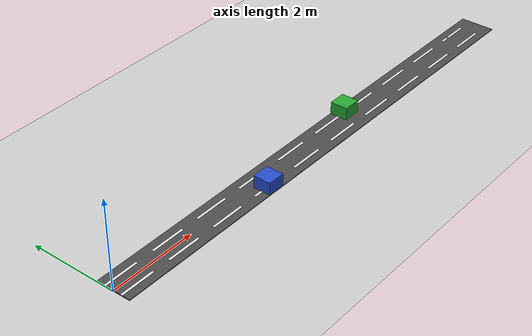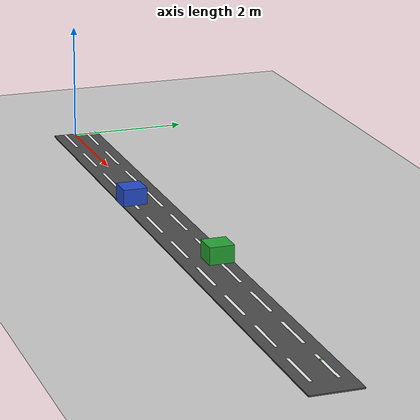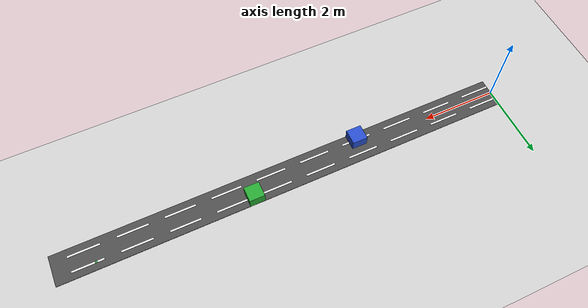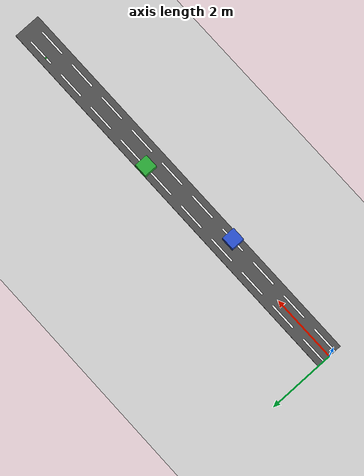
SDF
<sdf version="1.7">
 <world name="default">
  <light name="sun" type="directional">
   <pose>0 0 10 0 -0 0</pose>
   <diffuse>0.8 0.8 0.8 1</diffuse>
   <specular>0.2 0.2 0.2 1</specular>
   <attenuation>
    <range>1000</range>
    <constant>0.9</constant>
    <linear>0.01</linear>
    <quadratic>0.001</quadratic>
   </attenuation>
   <direction>-0.5 0.1 -0.9</direction>
   <spot><inner_angle>0</inner_angle><outer_angle>0</outer_angle><falloff>0</falloff></spot>
  </light>
  <model name="ground_plane">
   <static>1</static>
   <link name="link">
    <collision name="collision">
     <geometry><plane><normal>0 0 1</normal><size>100 100</size></plane></geometry>
     <surface><friction><ode><mu>100</mu><mu2>50</mu2></ode></friction></surface>
    </collision>
    <visual name="visual">
     <cast_shadows>0</cast_shadows>
     <geometry><plane><normal>0 0 1</normal><size>100 100</size></plane></geometry>
     <material>
      <script><uri>file://media/materials/scripts/gazebo.material</uri><name>Gazebo/Grey</name></script>
     </material>
    </visual>
   </link>
  </model>
  <model name="road_surface">
   <static>1</static>
   <pose>6 0 0.01 0 -0 0</pose>
   <link name="link">
    <visual name="visual">
     <geometry><box><size>12 0.8 0.02</size></box></geometry>
     <material>
      <script><uri>file://media/materials/scripts/gazebo.material</uri><name>Gazebo/DarkGrey</name></script>
     </material>
    </visual>
    <collision name="collision"><geometry><box><size>12 0.8 0.02</size></box></geometry></collision>
   </link>
  </model>
  <model name="dash_left_1">
   <static>1</static>
   <pose>0.4 0.2 0.02 0 -0 0</pose>
   <link name="l">
    <visual name="v">
     <geometry><box><size>0.8 0.05 0.002</size></box></geometry>
     <material>
      <script><uri>file://media/materials/scripts/gazebo.material</uri><name>Gazebo/White</name></script>
     </material>
    </visual>
   </link>
  </model>
  <model name="dash_left_2">
   <static>1</static>
   <pose>1.6 0.2 0.02 0 -0 0</pose>
   <link name="l">
    <visual name="v">
     <geometry><box><size>0.8 0.05 0.002</size></box></geometry>
     <material>
      <script><uri>file://media/materials/scripts/gazebo.material</uri><name>Gazebo/White</name></script>
     </material>
    </visual>
   </link>
  </model>
  <model name="dash_left_3">
   <static>1</static>
   <pose>2.8 0.2 0.02 0 -0 0</pose>
   <link name="l">
    <visual name="v">
     <geometry><box><size>0.8 0.05 0.002</size></box></geometry>
     <material>
      <script><uri>file://media/materials/scripts/gazebo.material</uri><name>Gazebo/White</name></script>
     </material>
    </visual>
   </link>
  </model>
  <model name="dash_left_4">
   <static>1</static>
   <pose>4 0.2 0.02 0 -0 0</pose>
   <link name="l">
    <visual name="v">
     <geometry><box><size>0.8 0.05 0.002</size></box></geometry>
     <material>
      <script><uri>file://media/materials/scripts/gazebo.material</uri><name>Gazebo/White</name></script>
     </material>
    </visual>
   </link>
  </model>
  <model name="dash_left_5">
   <static>1</static>
   <pose>5.2 0.2 0.02 0 -0 0</pose>
   <link name="l">
    <visual name="v">
     <geometry><box><size>0.8 0.05 0.002</size></box></geometry>
     <material>
      <script><uri>file://media/materials/scripts/gazebo.material</uri><name>Gazebo/White</name></script>
     </material>
    </visual>
   </link>
  </model>
  <model name="dash_left_6">
   <static>1</static>
   <pose>6.4 0.2 0.02 0 -0 0</pose>
   <link name="l">
    <visual name="v">
     <geometry><box><size>0.8 0.05 0.002</size></box></geometry>
     <material>
      <script><uri>file://media/materials/scripts/gazebo.material</uri><name>Gazebo/White</name></script>
     </material>
    </visual>
   </link>
  </model>
  <model name="dash_left_7">
   <static>1</static>
   <pose>7.6 0.2 0.02 0 -0 0</pose>
   <link name="l">
    <visual name="v">
     <geometry><box><size>0.8 0.05 0.002</size></box></geometry>
     <material>
      <script><uri>file://media/materials/scripts/gazebo.material</uri><name>Gazebo/White</name></script>
     </material>
    </visual>
   </link>
  </model>
  <model name="dash_left_8">
   <static>1</static>
   <pose>8.8 0.2 0.02 0 -0 0</pose>
   <link name="l">
    <visual name="v">
     <geometry><box><size>0.8 0.05 0.002</size></box></geometry>
     <material>
      <script><uri>file://media/materials/scripts/gazebo.material</uri><name>Gazebo/White</name></script>
     </material>
    </visual>
   </link>
  </model>
  <model name="dash_left_9">
   <static>1</static>
   <pose>10 0.2 0.02 0 -0 0</pose>
   <link name="l">
    <visual name="v">
     <geometry><box><size>0.8 0.05 0.002</size></box></geometry>
     <material>
      <script><uri>file://media/materials/scripts/gazebo.material</uri><name>Gazebo/White</name></script>
     </material>
    </visual>
   </link>
  </model>
  <model name="dash_left_10">
   <static>1</static>
   <pose>11.2 0.2 0.02 0 -0 0</pose>
   <link name="l">
    <visual name="v">
     <geometry><box><size>0.8 0.05 0.002</size></box></geometry>
     <material>
      <script><uri>file://media/materials/scripts/gazebo.material</uri><name>Gazebo/White</name></script>
     </material>
    </visual>
   </link>
  </model>
  <model name="dash_right_1">
   <static>1</static>
   <pose>0.4 -0.2 0.02 0 -0 0</pose>
   <link name="l">
    <visual name="v">
     <geometry><box><size>0.8 0.05 0.002</size></box></geometry>
     <material>
      <script><uri>file://media/materials/scripts/gazebo.material</uri><name>Gazebo/White</name></script>
     </material>
    </visual>
   </link>
  </model>
  <model name="dash_right_2">
   <static>1</static>
   <pose>1.6 -0.2 0.02 0 -0 0</pose>
   <link name="l">
    <visual name="v">
     <geometry><box><size>0.8 0.05 0.002</size></box></geometry>
     <material>
      <script><uri>file://media/materials/scripts/gazebo.material</uri><name>Gazebo/White</name></script>
     </material>
    </visual>
   </link>
  </model>
  <model name="dash_right_3">
   <static>1</static>
   <pose>2.8 -0.2 0.02 0 -0 0</pose>
   <link name="l">
    <visual name="v">
     <geometry><box><size>0.8 0.05 0.002</size></box></geometry>
     <material>
      <script><uri>file://media/materials/scripts/gazebo.material</uri><name>Gazebo/White</name></script>
     </material>
    </visual>
   </link>
  </model>
  <model name="dash_right_4">
   <static>1</static>
   <pose>4 -0.2 0.02 0 -0 0</pose>
   <link name="l">
    <visual name="v">
     <geometry><box><size>0.8 0.05 0.002</size></box></geometry>
     <material>
      <script><uri>file://media/materials/scripts/gazebo.material</uri><name>Gazebo/White</name></script>
     </material>
    </visual>
   </link>
  </model>
  <model name="dash_right_5">
   <static>1</static>
   <pose>5.2 -0.2 0.02 0 -0 0</pose>
   <link name="l">
    <visual name="v">
     <geometry><box><size>0.8 0.05 0.002</size></box></geometry>
     <material>
      <script><uri>file://media/materials/scripts/gazebo.material</uri><name>Gazebo/White</name></script>
     </material>
    </visual>
   </link>
  </model>
  <model name="dash_right_6">
   <static>1</static>
   <pose>6.4 -0.2 0.02 0 -0 0</pose>
   <link name="l">
    <visual name="v">
     <geometry><box><size>0.8 0.05 0.002</size></box></geometry>
     <material>
      <script><uri>file://media/materials/scripts/gazebo.material</uri><name>Gazebo/White</name></script>
     </material>
    </visual>
   </link>
  </model>
  <model name="dash_right_7">
   <static>1</static>
   <pose>7.6 -0.2 0.02 0 -0 0</pose>
   <link name="l">
    <visual name="v">
     <geometry><box><size>0.8 0.05 0.002</size></box></geometry>
     <material>
      <script><uri>file://media/materials/scripts/gazebo.material</uri><name>Gazebo/White</name></script>
     </material>
    </visual>
   </link>
  </model>
  <model name="dash_right_8">
   <static>1</static>
   <pose>8.8 -0.2 0.02 0 -0 0</pose>
   <link name="l">
    <visual name="v">
     <geometry><box><size>0.8 0.05 0.002</size></box></geometry>
     <material>
      <script><uri>file://media/materials/scripts/gazebo.material</uri><name>Gazebo/White</name></script>
     </material>
    </visual>
   </link>
  </model>
  <model name="dash_right_9">
   <static>1</static>
   <pose>10 -0.2 0.02 0 -0 0</pose>
   <link name="l">
    <visual name="v">
     <geometry><box><size>0.8 0.05 0.002</size></box></geometry>
     <material>
      <script><uri>file://media/materials/scripts/gazebo.material</uri><name>Gazebo/White</name></script>
     </material>
    </visual>
   </link>
  </model>
  <model name="dash_right_10">
   <static>1</static>
   <pose>11.2 -0.2 0.02 0 -0 0</pose>
   <link name="l">
    <visual name="v">
     <geometry><box><size>0.8 0.05 0.002</size></box></geometry>
     <material>
      <script><uri>file://media/materials/scripts/gazebo.material</uri><name>Gazebo/White</name></script>
     </material>
    </visual>
   </link>
  </model>
  <model name="stop_marker_plane">
   <static>1</static>
   <pose>11 0.2 0.03 0 -0 0</pose>
   <link name="link">
    <visual name="visual">
     <geometry><plane><normal>0 0 1</normal><size>0.05 0.05</size></plane></geometry>
     <material>
      <script><uri>file://media/materials/scripts/gazebo.material</uri><name>Gazebo/Green</name></script>
     </material>
    </visual>
   </link>
  </model>
  <model name="obstacle_1">
   <static>1</static>
   <pose>4 -0.2 0.15 0 -0 0</pose>
   <link name="link">
    <visual name="visual">
     <geometry><box><size>0.4 0.4 0.3</size></box></geometry>
     <material>
      <script><uri>file://media/materials/scripts/gazebo.material</uri><name>Gazebo/Blue</name></script>
     </material>
    </visual>
    <collision name="collision"><geometry><box><size>0.4 0.4 0.3</size></box></geometry></collision>
   </link>
  </model>
  <model name="obstacle_2">
   <static>1</static>
   <pose>7 0.2 0.15 0 -0 0</pose>
   <link name="link">
    <visual name="visual">
     <geometry><box><size>0.4 0.4 0.3</size></box></geometry>
     <material>
      <script><uri>file://media/materials/scripts/gazebo.material</uri><name>Gazebo/Green</name></script>
     </material>
    </visual>
    <collision name="collision"><geometry><box><size>0.4 0.4 0.3</size></box></geometry></collision>
   </link>
  </model>
  <gravity>0 0 -9.8</gravity>
  <magnetic_field>6e-06 2.3e-05 -4.2e-05</magnetic_field>
  <atmosphere type="adiabatic"/>
  <physics type="ode">
   <max_step_size>0.001</max_step_size>
   <real_time_factor>1</real_time_factor>
   <real_time_update_rate>1000</real_time_update_rate>
  </physics>
  <scene><ambient>0.4 0.4 0.4 1</ambient><background>0.7 0.7 0.7 1</background><shadows>1</shadows></scene>
  <audio><device>default</device></audio>
  <spherical_coordinates>
   <surface_model>EARTH_WGS84</surface_model>
   <latitude_deg>0</latitude_deg>
   <longitude_deg>0</longitude_deg>
   <elevation>0</elevation>
   <heading_deg>0</heading_deg>
  </spherical_coordinates>
 </world>
</sdf>
